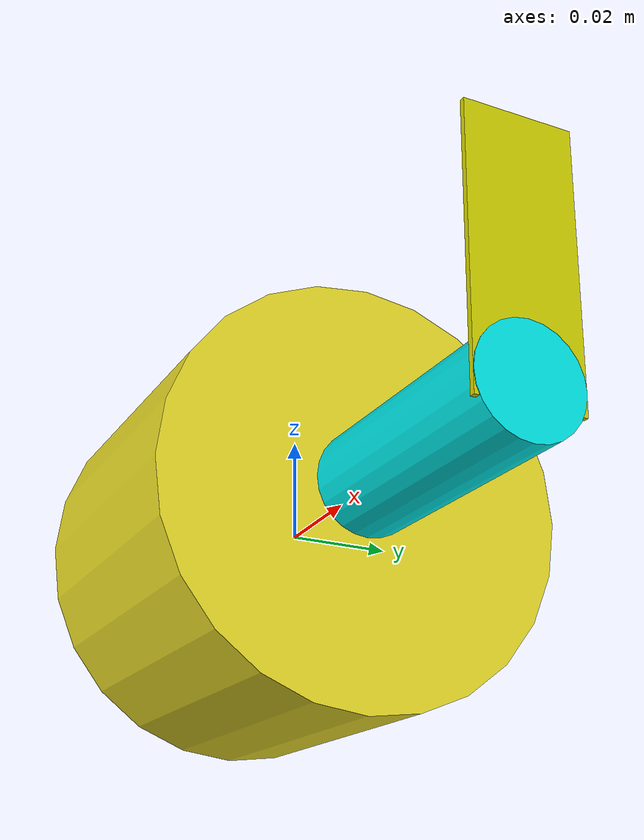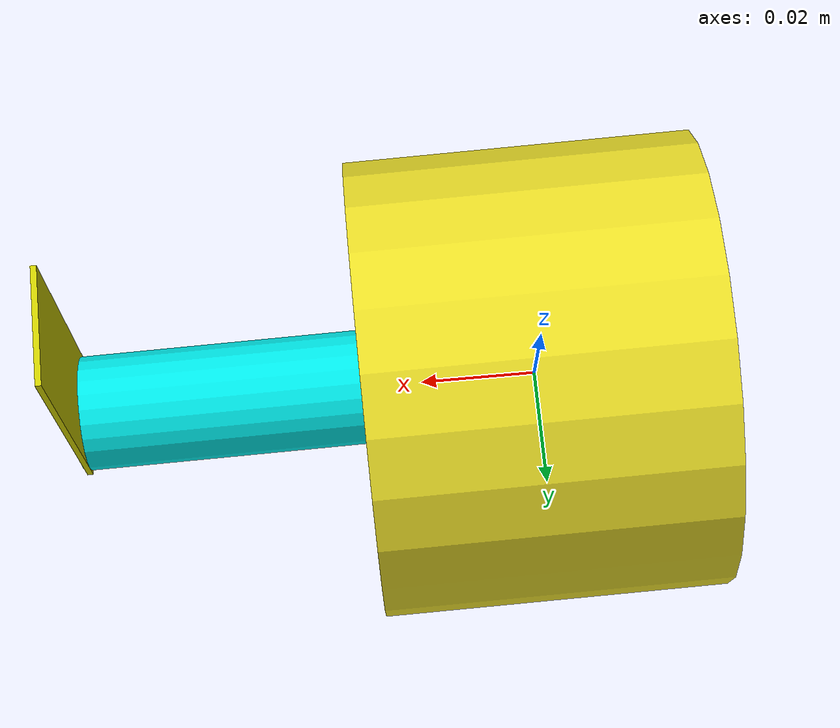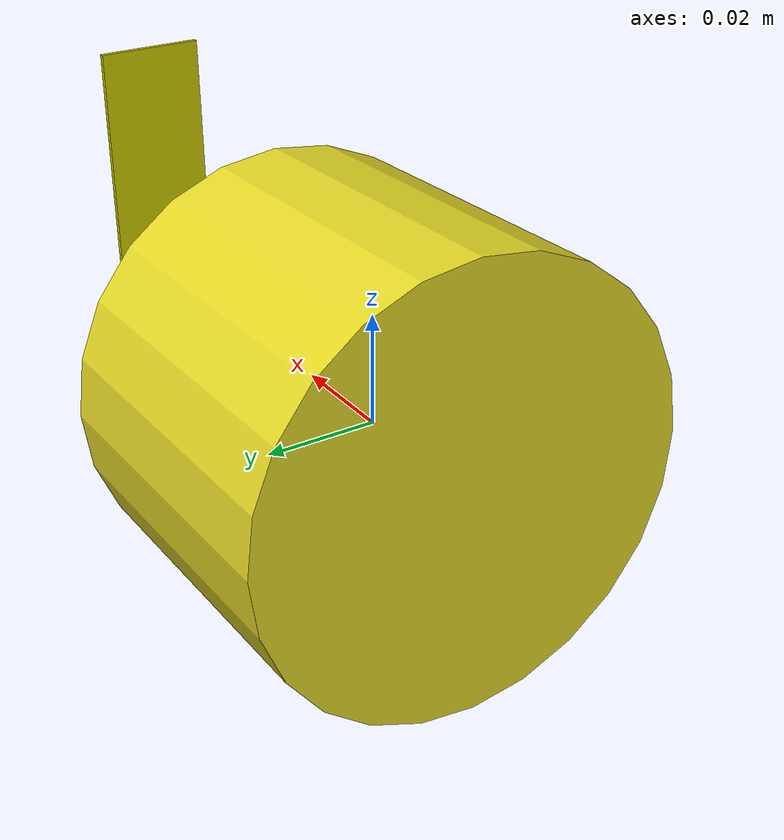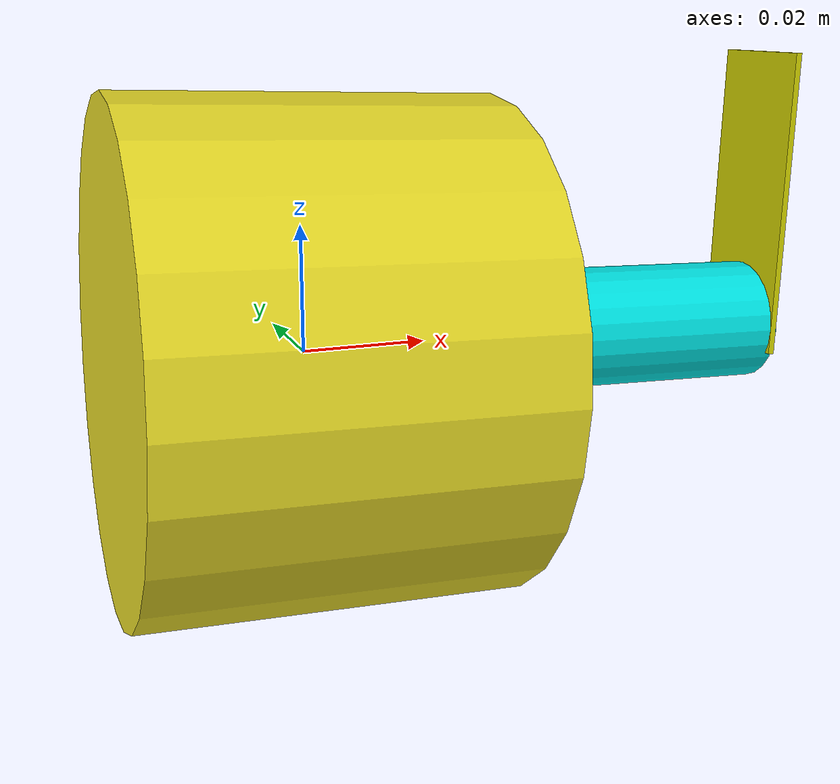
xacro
<?xml version="1.0"?>
<!-- The urdf for the motor -->
<robot name="motor_urdf" xmlns:xacro="http://ros.org/wiki/xacro">
  <!-- Gazebo plugin diff_drive -->
  <gazebo>
    <plugin name="differential_drive_controller" filename="libgazebo_ros_diff_drive.so">
      <legacyMode>false</legacyMode>
      <alwaysOn>true</alwaysOn>
      <updateRate>10</updateRate>
      <leftJoint>base_link_to_shaft</leftJoint>
      <rightJoint>base_link_to_shaft</rightJoint>
      <wheelSeparation>0</wheelSeparation>
      <wheelDiameter>0.2</wheelDiameter>
      <torque>10</torque>
      <commandTopic>cmd_vel</commandTopic>
      <odometryTopic>odom</odometryTopic>
      <odometryFrame>odom</odometryFrame>
      <robotBaseFrame>base_link</robotBaseFrame>
    </plugin>
  </gazebo>

  <!-- Gazebo colors. -->
  <gazebo reference="base_link">
    <material>Gazebo/Yellow</material>
  </gazebo>

  <gazebo reference="propeller">
    <material>Gazebo/Turquoise </material>
  </gazebo>

  <gazebo reference="shaft">
    <material>Gazebo/Green</material>
  </gazebo>

  <!-- World link to keep motor in place. -->
  <link name="world" />

  <joint name="fixed" type="fixed">
    <parent link="world" />
    <child link="base_link" />
  </joint>

  <!--Base link -->
  <link name="base_link">
    <visual>
      <origin xyz="0 0 0" rpy="0 1.6 0" />
      <geometry>
        <cylinder length="0.06" radius="0.04" />
      </geometry>
    </visual>

    <collision name="collision">
      <origin xyz="0 0 0" rpy="0 1.6 0" />
      <geometry>
        <cylinder radius="0.06" length="0.04" />
      </geometry>
    </collision>

    <inertial>
      <origin xyz="0 0 0" rpy="0 1.6 0" />
      <mass value="5" />
      <inertia ixx=".1" ixy="0.0" ixz="0.0" iyy=".1" iyz="0.0" izz=".1" />
    </inertial>
  </link>

  <!-- Shaft link -->
  <link name="shaft">
    <visual>
      <origin xyz="0.05 0 0" rpy="0 1.6 0" />
      <geometry>
        <cylinder length="0.06" radius="0.01" />
      </geometry>
      <!-- Colors for RVIZ -->
      <material name="Cyan1">
        <color rgba="0 0.9 0.9 1.0" />
      </material>
    </visual>

    <collision name="collision">
      <origin xyz="0 0 0" rpy="0 1.6 0" />
      <geometry>
        <cylinder radius="0.06" length="0.01" />
      </geometry>
    </collision>

    <inertial>
      <origin xyz="0 0 0" rpy="0 1.6 0" />
      <mass value="5" />
      <inertia ixx=".1" ixy="0.0" ixz="0.0" iyy=".1" iyz="0.0" izz=".1" />
    </inertial>
  </link>

  <!-- Propeller link -->
  <link name="propeller">
    <visual>
      <origin xyz="0.08 0 0" rpy="0 1.6 0" />
      <geometry>
        <box size="0.05 0.02 0.001" />
      </geometry>
      <!-- Colors for RVIZ -->
      <material name="Yellow1">
        <color rgba="0.8 0.8 0 1.0" />
      </material>
    </visual>

    <collision name="collision">
      <origin xyz="0 0 0" rpy="0 1.6 0" />
      <geometry>
        <box size="0.05 0.02 0.001" />
      </geometry>
    </collision>

    <inertial>
      <origin xyz="0 0 0" rpy="0 1.6 0" />
      <mass value="5" />
      <inertia ixx=".1" ixy="0.0" ixz="0.0" iyy=".1" iyz="0.0" izz=".1" />
    </inertial>
  </link>

  <!-- Shaft joint -->
  <joint name="shaft_joint" type="fixed">
    <origin rpy="0 0 0" xyz="0.0 0 0.02" />
    <parent link="shaft" />
    <child link="propeller" />
  </joint>

  <!-- Base link to shaft -->
  <joint name="base_link_to_shaft" type="continuous">
    <axis xyz="1 0 0" />
    <origin rpy="0 0 0" xyz="0 0 0" />
    <parent link="base_link" />
    <child link="shaft" />
  </joint>

</robot>
